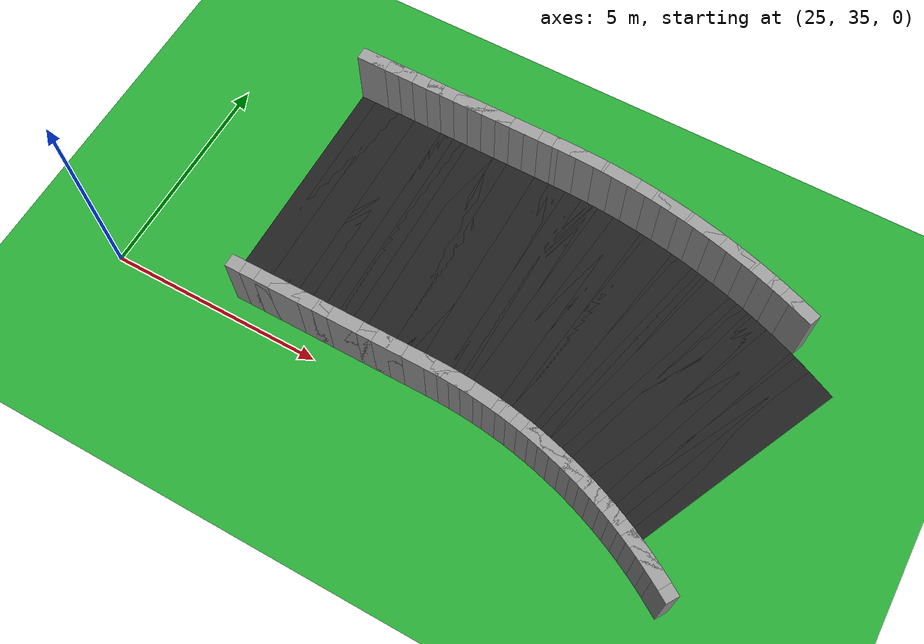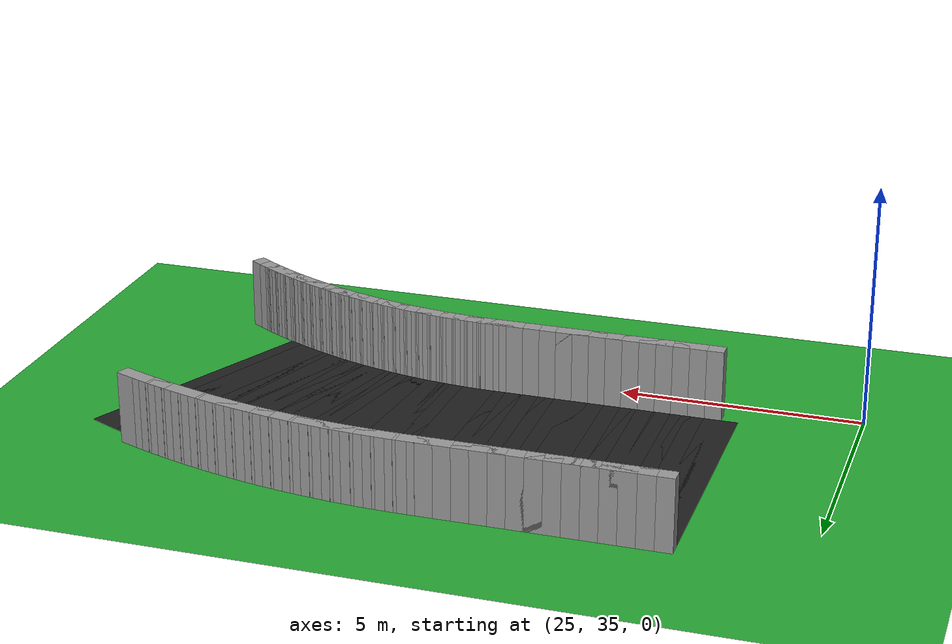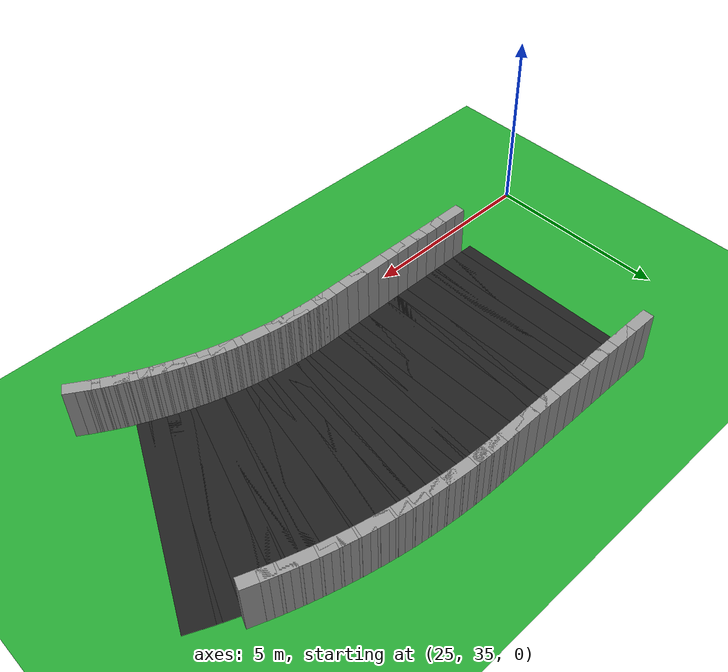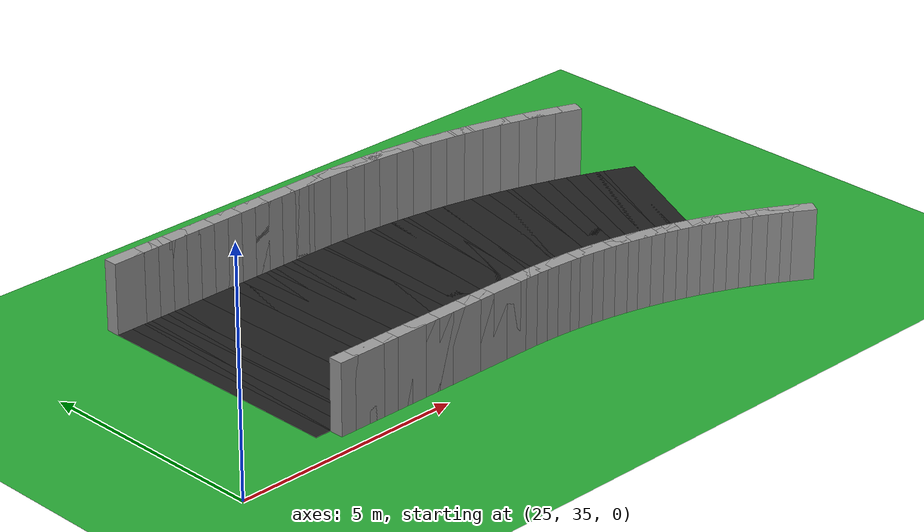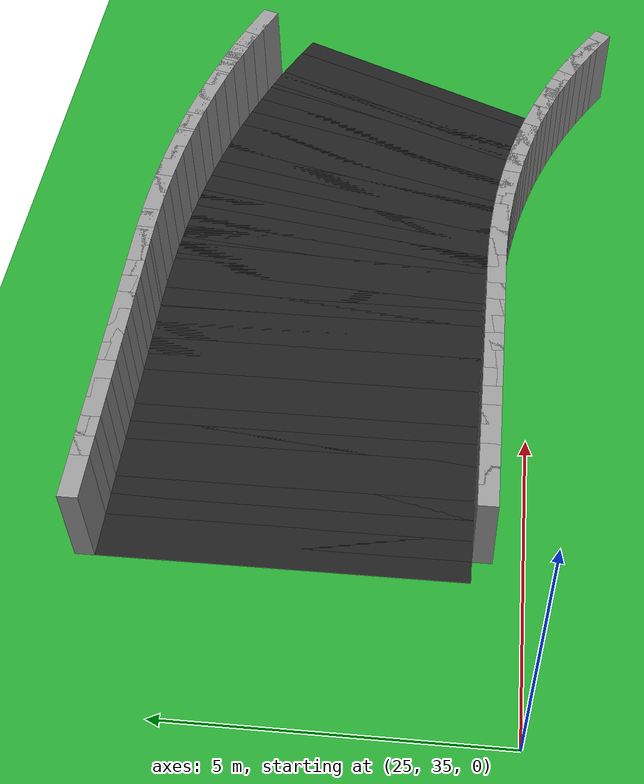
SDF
<sdf version="1.6">
 <world name="loop_speedloop">
  <include><uri>model://sun</uri></include>
  <model name="ground_plane">
   <static>true</static>
   <link name="link">
    <collision name="collision">
     <surface><friction><ode><mu>100</mu><mu2>50</mu2></ode></friction></surface>
     <geometry><plane><normal>0 0 1</normal><size>120 120</size></plane></geometry>
    </collision>
    <visual name="visual">
     <geometry><plane><normal>0 0 1</normal><size>120 120</size></plane></geometry>
     <material>
      <script><uri>file://media/materials/scripts/gazebo.material</uri><name>Gazebo/Green</name></script>
     </material>
    </visual>
   </link>
  </model>
  <model name="curbL_237">
   <static>true</static>
   <pose>38.406 33.899 0.750 0 0 2.58059</pose>
   <link name="link">
    <collision name="collision"><geometry><box><size>0.637 0.300 1.500</size></box></geometry></collision>
    <visual name="visual">
     <geometry><box><size>0.637 0.300 1.500</size></box></geometry>
     <material>
      <script><uri>file://media/materials/scripts/gazebo.material</uri><name>Gazebo/Grey</name></script>
     </material>
    </visual>
   </link>
  </model>
  <model name="curbL_238">
   <static>true</static>
   <pose>38.170 34.044 0.750 0 0 2.60553</pose>
   <link name="link">
    <collision name="collision"><geometry><box><size>0.637 0.300 1.500</size></box></geometry></collision>
    <visual name="visual">
     <geometry><box><size>0.637 0.300 1.500</size></box></geometry>
     <material>
      <script><uri>file://media/materials/scripts/gazebo.material</uri><name>Gazebo/Grey</name></script>
     </material>
    </visual>
   </link>
  </model>
  <model name="curbL_239">
   <static>true</static>
   <pose>37.930 34.182 0.750 0 0 2.63046</pose>
   <link name="link">
    <collision name="collision"><geometry><box><size>0.637 0.300 1.500</size></box></geometry></collision>
    <visual name="visual">
     <geometry><box><size>0.637 0.300 1.500</size></box></geometry>
     <material>
      <script><uri>file://media/materials/scripts/gazebo.material</uri><name>Gazebo/Grey</name></script>
     </material>
    </visual>
   </link>
  </model>
  <model name="curbL_240">
   <static>true</static>
   <pose>37.687 34.314 0.750 0 0 2.65539</pose>
   <link name="link">
    <collision name="collision"><geometry><box><size>0.637 0.300 1.500</size></box></geometry></collision>
    <visual name="visual">
     <geometry><box><size>0.637 0.300 1.500</size></box></geometry>
     <material>
      <script><uri>file://media/materials/scripts/gazebo.material</uri><name>Gazebo/Grey</name></script>
     </material>
    </visual>
   </link>
  </model>
  <model name="curbL_241">
   <static>true</static>
   <pose>37.441 34.441 0.750 0 0 2.68033</pose>
   <link name="link">
    <collision name="collision"><geometry><box><size>0.637 0.300 1.500</size></box></geometry></collision>
    <visual name="visual">
     <geometry><box><size>0.637 0.300 1.500</size></box></geometry>
     <material>
      <script><uri>file://media/materials/scripts/gazebo.material</uri><name>Gazebo/Grey</name></script>
     </material>
    </visual>
   </link>
  </model>
  <model name="asphalt_242">
   <static>true</static>
   <pose>38.417 37.189 0.005 0 0 2.70526</pose>
   <link name="link">
    <visual name="visual">
     <geometry><box><size>0.709 5.500 0.010</size></box></geometry>
     <material>
      <script><uri>file://media/materials/scripts/gazebo.material</uri><name>Gazebo/Black</name></script>
     </material>
    </visual>
   </link>
  </model>
  <model name="curbL_242">
   <static>true</static>
   <pose>37.192 34.561 0.750 0 0 2.70526</pose>
   <link name="link">
    <collision name="collision"><geometry><box><size>0.637 0.300 1.500</size></box></geometry></collision>
    <visual name="visual">
     <geometry><box><size>0.637 0.300 1.500</size></box></geometry>
     <material>
      <script><uri>file://media/materials/scripts/gazebo.material</uri><name>Gazebo/Grey</name></script>
     </material>
    </visual>
   </link>
  </model>
  <model name="asphalt_243">
   <static>true</static>
   <pose>38.099 37.332 0.005 0 0 2.73019</pose>
   <link name="link">
    <visual name="visual">
     <geometry><box><size>0.709 5.500 0.010</size></box></geometry>
     <material>
      <script><uri>file://media/materials/scripts/gazebo.material</uri><name>Gazebo/Black</name></script>
     </material>
    </visual>
   </link>
  </model>
  <model name="curbL_243">
   <static>true</static>
   <pose>36.939 34.675 0.750 0 0 2.73019</pose>
   <link name="link">
    <collision name="collision"><geometry><box><size>0.637 0.300 1.500</size></box></geometry></collision>
    <visual name="visual">
     <geometry><box><size>0.637 0.300 1.500</size></box></geometry>
     <material>
      <script><uri>file://media/materials/scripts/gazebo.material</uri><name>Gazebo/Grey</name></script>
     </material>
    </visual>
   </link>
  </model>
  <model name="asphalt_244">
   <static>true</static>
   <pose>37.777 37.468 0.005 0 0 2.75513</pose>
   <link name="link">
    <visual name="visual">
     <geometry><box><size>0.709 5.500 0.010</size></box></geometry>
     <material>
      <script><uri>file://media/materials/scripts/gazebo.material</uri><name>Gazebo/Black</name></script>
     </material>
    </visual>
   </link>
  </model>
  <model name="curbL_244">
   <static>true</static>
   <pose>36.684 34.782 0.750 0 0 2.75513</pose>
   <link name="link">
    <collision name="collision"><geometry><box><size>0.637 0.300 1.500</size></box></geometry></collision>
    <visual name="visual">
     <geometry><box><size>0.637 0.300 1.500</size></box></geometry>
     <material>
      <script><uri>file://media/materials/scripts/gazebo.material</uri><name>Gazebo/Grey</name></script>
     </material>
    </visual>
   </link>
  </model>
  <model name="asphalt_245">
   <static>true</static>
   <pose>37.452 37.595 0.005 0 0 2.78006</pose>
   <link name="link">
    <visual name="visual">
     <geometry><box><size>0.709 5.500 0.010</size></box></geometry>
     <material>
      <script><uri>file://media/materials/scripts/gazebo.material</uri><name>Gazebo/Black</name></script>
     </material>
    </visual>
   </link>
  </model>
  <model name="curbL_245">
   <static>true</static>
   <pose>36.427 34.883 0.750 0 0 2.78006</pose>
   <link name="link">
    <collision name="collision"><geometry><box><size>0.637 0.300 1.500</size></box></geometry></collision>
    <visual name="visual">
     <geometry><box><size>0.637 0.300 1.500</size></box></geometry>
     <material>
      <script><uri>file://media/materials/scripts/gazebo.material</uri><name>Gazebo/Grey</name></script>
     </material>
    </visual>
   </link>
  </model>
  <model name="curbR_245">
   <static>true</static>
   <pose>38.478 40.308 0.750 0 0 2.78006</pose>
   <link name="link">
    <collision name="collision"><geometry><box><size>0.781 0.300 1.500</size></box></geometry></collision>
    <visual name="visual">
     <geometry><box><size>0.781 0.300 1.500</size></box></geometry>
     <material>
      <script><uri>file://media/materials/scripts/gazebo.material</uri><name>Gazebo/Grey</name></script>
     </material>
    </visual>
   </link>
  </model>
  <model name="asphalt_246">
   <static>true</static>
   <pose>37.124 37.715 0.005 0 0 2.80499</pose>
   <link name="link">
    <visual name="visual">
     <geometry><box><size>0.709 5.500 0.010</size></box></geometry>
     <material>
      <script><uri>file://media/materials/scripts/gazebo.material</uri><name>Gazebo/Black</name></script>
     </material>
    </visual>
   </link>
  </model>
  <model name="curbL_246">
   <static>true</static>
   <pose>36.167 34.978 0.750 0 0 2.80499</pose>
   <link name="link">
    <collision name="collision"><geometry><box><size>0.637 0.300 1.500</size></box></geometry></collision>
    <visual name="visual">
     <geometry><box><size>0.637 0.300 1.500</size></box></geometry>
     <material>
      <script><uri>file://media/materials/scripts/gazebo.material</uri><name>Gazebo/Grey</name></script>
     </material>
    </visual>
   </link>
  </model>
  <model name="curbR_246">
   <static>true</static>
   <pose>38.082 40.452 0.750 0 0 2.80499</pose>
   <link name="link">
    <collision name="collision"><geometry><box><size>0.781 0.300 1.500</size></box></geometry></collision>
    <visual name="visual">
     <geometry><box><size>0.781 0.300 1.500</size></box></geometry>
     <material>
      <script><uri>file://media/materials/scripts/gazebo.material</uri><name>Gazebo/Grey</name></script>
     </material>
    </visual>
   </link>
  </model>
  <model name="asphalt_247">
   <static>true</static>
   <pose>36.794 37.826 0.005 0 0 2.82993</pose>
   <link name="link">
    <visual name="visual">
     <geometry><box><size>0.709 5.500 0.010</size></box></geometry>
     <material>
      <script><uri>file://media/materials/scripts/gazebo.material</uri><name>Gazebo/Black</name></script>
     </material>
    </visual>
   </link>
  </model>
  <model name="curbL_247">
   <static>true</static>
   <pose>35.904 35.066 0.750 0 0 2.82993</pose>
   <link name="link">
    <collision name="collision"><geometry><box><size>0.637 0.300 1.500</size></box></geometry></collision>
    <visual name="visual">
     <geometry><box><size>0.637 0.300 1.500</size></box></geometry>
     <material>
      <script><uri>file://media/materials/scripts/gazebo.material</uri><name>Gazebo/Grey</name></script>
     </material>
    </visual>
   </link>
  </model>
  <model name="curbR_247">
   <static>true</static>
   <pose>37.683 40.586 0.750 0 0 2.82993</pose>
   <link name="link">
    <collision name="collision"><geometry><box><size>0.781 0.300 1.500</size></box></geometry></collision>
    <visual name="visual">
     <geometry><box><size>0.781 0.300 1.500</size></box></geometry>
     <material>
      <script><uri>file://media/materials/scripts/gazebo.material</uri><name>Gazebo/Grey</name></script>
     </material>
    </visual>
   </link>
  </model>
  <model name="asphalt_248">
   <static>true</static>
   <pose>36.460 37.929 0.005 0 0 2.85486</pose>
   <link name="link">
    <visual name="visual">
     <geometry><box><size>0.709 5.500 0.010</size></box></geometry>
     <material>
      <script><uri>file://media/materials/scripts/gazebo.material</uri><name>Gazebo/Black</name></script>
     </material>
    </visual>
   </link>
  </model>
  <model name="curbL_248">
   <static>true</static>
   <pose>35.640 35.147 0.750 0 0 2.85486</pose>
   <link name="link">
    <collision name="collision"><geometry><box><size>0.637 0.300 1.500</size></box></geometry></collision>
    <visual name="visual">
     <geometry><box><size>0.637 0.300 1.500</size></box></geometry>
     <material>
      <script><uri>file://media/materials/scripts/gazebo.material</uri><name>Gazebo/Grey</name></script>
     </material>
    </visual>
   </link>
  </model>
  <model name="curbR_248">
   <static>true</static>
   <pose>37.280 40.710 0.750 0 0 2.85486</pose>
   <link name="link">
    <collision name="collision"><geometry><box><size>0.781 0.300 1.500</size></box></geometry></collision>
    <visual name="visual">
     <geometry><box><size>0.781 0.300 1.500</size></box></geometry>
     <material>
      <script><uri>file://media/materials/scripts/gazebo.material</uri><name>Gazebo/Grey</name></script>
     </material>
    </visual>
   </link>
  </model>
  <model name="asphalt_249">
   <static>true</static>
   <pose>36.124 38.023 0.005 0 0 2.87979</pose>
   <link name="link">
    <visual name="visual">
     <geometry><box><size>0.709 5.500 0.010</size></box></geometry>
     <material>
      <script><uri>file://media/materials/scripts/gazebo.material</uri><name>Gazebo/Black</name></script>
     </material>
    </visual>
   </link>
  </model>
  <model name="curbL_249">
   <static>true</static>
   <pose>35.374 35.222 0.750 0 0 2.87979</pose>
   <link name="link">
    <collision name="collision"><geometry><box><size>0.637 0.300 1.500</size></box></geometry></collision>
    <visual name="visual">
     <geometry><box><size>0.637 0.300 1.500</size></box></geometry>
     <material>
      <script><uri>file://media/materials/scripts/gazebo.material</uri><name>Gazebo/Grey</name></script>
     </material>
    </visual>
   </link>
  </model>
  <model name="curbR_249">
   <static>true</static>
   <pose>36.875 40.824 0.750 0 0 2.87979</pose>
   <link name="link">
    <collision name="collision"><geometry><box><size>0.781 0.300 1.500</size></box></geometry></collision>
    <visual name="visual">
     <geometry><box><size>0.781 0.300 1.500</size></box></geometry>
     <material>
      <script><uri>file://media/materials/scripts/gazebo.material</uri><name>Gazebo/Grey</name></script>
     </material>
    </visual>
   </link>
  </model>
  <model name="asphalt_250">
   <static>true</static>
   <pose>35.786 38.110 0.005 0 0 2.90473</pose>
   <link name="link">
    <visual name="visual">
     <geometry><box><size>0.709 5.500 0.010</size></box></geometry>
     <material>
      <script><uri>file://media/materials/scripts/gazebo.material</uri><name>Gazebo/Black</name></script>
     </material>
    </visual>
   </link>
  </model>
  <model name="curbL_250">
   <static>true</static>
   <pose>35.105 35.291 0.750 0 0 2.90473</pose>
   <link name="link">
    <collision name="collision"><geometry><box><size>0.637 0.300 1.500</size></box></geometry></collision>
    <visual name="visual">
     <geometry><box><size>0.637 0.300 1.500</size></box></geometry>
     <material>
      <script><uri>file://media/materials/scripts/gazebo.material</uri><name>Gazebo/Grey</name></script>
     </material>
    </visual>
   </link>
  </model>
  <model name="curbR_250">
   <static>true</static>
   <pose>36.466 40.928 0.750 0 0 2.90473</pose>
   <link name="link">
    <collision name="collision"><geometry><box><size>0.781 0.300 1.500</size></box></geometry></collision>
    <visual name="visual">
     <geometry><box><size>0.781 0.300 1.500</size></box></geometry>
     <material>
      <script><uri>file://media/materials/scripts/gazebo.material</uri><name>Gazebo/Grey</name></script>
     </material>
    </visual>
   </link>
  </model>
  <model name="asphalt_251">
   <static>true</static>
   <pose>35.446 38.187 0.005 0 0 2.92966</pose>
   <link name="link">
    <visual name="visual">
     <geometry><box><size>0.709 5.500 0.010</size></box></geometry>
     <material>
      <script><uri>file://media/materials/scripts/gazebo.material</uri><name>Gazebo/Black</name></script>
     </material>
    </visual>
   </link>
  </model>
  <model name="curbL_251">
   <static>true</static>
   <pose>34.836 35.352 0.750 0 0 2.92966</pose>
   <link name="link">
    <collision name="collision"><geometry><box><size>0.637 0.300 1.500</size></box></geometry></collision>
    <visual name="visual">
     <geometry><box><size>0.637 0.300 1.500</size></box></geometry>
     <material>
      <script><uri>file://media/materials/scripts/gazebo.material</uri><name>Gazebo/Grey</name></script>
     </material>
    </visual>
   </link>
  </model>
  <model name="curbR_251">
   <static>true</static>
   <pose>36.056 41.022 0.750 0 0 2.92966</pose>
   <link name="link">
    <collision name="collision"><geometry><box><size>0.781 0.300 1.500</size></box></geometry></collision>
    <visual name="visual">
     <geometry><box><size>0.781 0.300 1.500</size></box></geometry>
     <material>
      <script><uri>file://media/materials/scripts/gazebo.material</uri><name>Gazebo/Grey</name></script>
     </material>
    </visual>
   </link>
  </model>
  <model name="asphalt_252">
   <static>true</static>
   <pose>35.103 38.256 0.005 0 0 2.95459</pose>
   <link name="link">
    <visual name="visual">
     <geometry><box><size>0.709 5.500 0.010</size></box></geometry>
     <material>
      <script><uri>file://media/materials/scripts/gazebo.material</uri><name>Gazebo/Black</name></script>
     </material>
    </visual>
   </link>
  </model>
  <model name="curbL_252">
   <static>true</static>
   <pose>34.564 35.407 0.750 0 0 2.95459</pose>
   <link name="link">
    <collision name="collision"><geometry><box><size>0.637 0.300 1.500</size></box></geometry></collision>
    <visual name="visual">
     <geometry><box><size>0.637 0.300 1.500</size></box></geometry>
     <material>
      <script><uri>file://media/materials/scripts/gazebo.material</uri><name>Gazebo/Grey</name></script>
     </material>
    </visual>
   </link>
  </model>
  <model name="curbR_252">
   <static>true</static>
   <pose>35.643 41.106 0.750 0 0 2.95459</pose>
   <link name="link">
    <collision name="collision"><geometry><box><size>0.781 0.300 1.500</size></box></geometry></collision>
    <visual name="visual">
     <geometry><box><size>0.781 0.300 1.500</size></box></geometry>
     <material>
      <script><uri>file://media/materials/scripts/gazebo.material</uri><name>Gazebo/Grey</name></script>
     </material>
    </visual>
   </link>
  </model>
  <model name="asphalt_253">
   <static>true</static>
   <pose>34.760 38.317 0.005 0 0 2.97953</pose>
   <link name="link">
    <visual name="visual">
     <geometry><box><size>0.709 5.500 0.010</size></box></geometry>
     <material>
      <script><uri>file://media/materials/scripts/gazebo.material</uri><name>Gazebo/Black</name></script>
     </material>
    </visual>
   </link>
  </model>
  <model name="curbL_253">
   <static>true</static>
   <pose>34.292 35.455 0.750 0 0 2.97953</pose>
   <link name="link">
    <collision name="collision"><geometry><box><size>0.637 0.300 1.500</size></box></geometry></collision>
    <visual name="visual">
     <geometry><box><size>0.637 0.300 1.500</size></box></geometry>
     <material>
      <script><uri>file://media/materials/scripts/gazebo.material</uri><name>Gazebo/Grey</name></script>
     </material>
    </visual>
   </link>
  </model>
  <model name="curbR_253">
   <static>true</static>
   <pose>35.228 41.179 0.750 0 0 2.97953</pose>
   <link name="link">
    <collision name="collision"><geometry><box><size>0.781 0.300 1.500</size></box></geometry></collision>
    <visual name="visual">
     <geometry><box><size>0.781 0.300 1.500</size></box></geometry>
     <material>
      <script><uri>file://media/materials/scripts/gazebo.material</uri><name>Gazebo/Grey</name></script>
     </material>
    </visual>
   </link>
  </model>
  <model name="asphalt_254">
   <static>true</static>
   <pose>34.415 38.369 0.005 0 0 3.00446</pose>
   <link name="link">
    <visual name="visual">
     <geometry><box><size>0.709 5.500 0.010</size></box></geometry>
     <material>
      <script><uri>file://media/materials/scripts/gazebo.material</uri><name>Gazebo/Black</name></script>
     </material>
    </visual>
   </link>
  </model>
  <model name="curbL_254">
   <static>true</static>
   <pose>34.018 35.496 0.750 0 0 3.00446</pose>
   <link name="link">
    <collision name="collision"><geometry><box><size>0.637 0.300 1.500</size></box></geometry></collision>
    <visual name="visual">
     <geometry><box><size>0.637 0.300 1.500</size></box></geometry>
     <material>
      <script><uri>file://media/materials/scripts/gazebo.material</uri><name>Gazebo/Grey</name></script>
     </material>
    </visual>
   </link>
  </model>
  <model name="curbR_254">
   <static>true</static>
   <pose>34.811 41.242 0.750 0 0 3.00446</pose>
   <link name="link">
    <collision name="collision"><geometry><box><size>0.781 0.300 1.500</size></box></geometry></collision>
    <visual name="visual">
     <geometry><box><size>0.781 0.300 1.500</size></box></geometry>
     <material>
      <script><uri>file://media/materials/scripts/gazebo.material</uri><name>Gazebo/Grey</name></script>
     </material>
    </visual>
   </link>
  </model>
  <model name="asphalt_255">
   <static>true</static>
   <pose>34.068 38.412 0.005 0 0 3.02939</pose>
   <link name="link">
    <visual name="visual">
     <geometry><box><size>0.709 5.500 0.010</size></box></geometry>
     <material>
      <script><uri>file://media/materials/scripts/gazebo.material</uri><name>Gazebo/Black</name></script>
     </material>
    </visual>
   </link>
  </model>
  <model name="curbL_255">
   <static>true</static>
   <pose>33.744 35.531 0.750 0 0 3.02939</pose>
   <link name="link">
    <collision name="collision"><geometry><box><size>0.637 0.300 1.500</size></box></geometry></collision>
    <visual name="visual">
     <geometry><box><size>0.637 0.300 1.500</size></box></geometry>
     <material>
      <script><uri>file://media/materials/scripts/gazebo.material</uri><name>Gazebo/Grey</name></script>
     </material>
    </visual>
   </link>
  </model>
  <model name="curbR_255">
   <static>true</static>
   <pose>34.393 41.294 0.750 0 0 3.02939</pose>
   <link name="link">
    <collision name="collision"><geometry><box><size>0.781 0.300 1.500</size></box></geometry></collision>
    <visual name="visual">
     <geometry><box><size>0.781 0.300 1.500</size></box></geometry>
     <material>
      <script><uri>file://media/materials/scripts/gazebo.material</uri><name>Gazebo/Grey</name></script>
     </material>
    </visual>
   </link>
  </model>
  <model name="asphalt_256">
   <static>true</static>
   <pose>33.721 38.447 0.005 0 0 3.05433</pose>
   <link name="link">
    <visual name="visual">
     <geometry><box><size>0.709 5.500 0.010</size></box></geometry>
     <material>
      <script><uri>file://media/materials/scripts/gazebo.material</uri><name>Gazebo/Black</name></script>
     </material>
    </visual>
   </link>
  </model>
  <model name="curbL_256">
   <static>true</static>
   <pose>33.468 35.558 0.750 0 0 3.05433</pose>
   <link name="link">
    <collision name="collision"><geometry><box><size>0.637 0.300 1.500</size></box></geometry></collision>
    <visual name="visual">
     <geometry><box><size>0.637 0.300 1.500</size></box></geometry>
     <material>
      <script><uri>file://media/materials/scripts/gazebo.material</uri><name>Gazebo/Grey</name></script>
     </material>
    </visual>
   </link>
  </model>
  <model name="curbR_256">
   <static>true</static>
   <pose>33.974 41.336 0.750 0 0 3.05433</pose>
   <link name="link">
    <collision name="collision"><geometry><box><size>0.781 0.300 1.500</size></box></geometry></collision>
    <visual name="visual">
     <geometry><box><size>0.781 0.300 1.500</size></box></geometry>
     <material>
      <script><uri>file://media/materials/scripts/gazebo.material</uri><name>Gazebo/Grey</name></script>
     </material>
    </visual>
   </link>
  </model>
  <model name="asphalt_257">
   <static>true</static>
   <pose>33.373 38.473 0.005 0 0 3.07926</pose>
   <link name="link">
    <visual name="visual">
     <geometry><box><size>0.709 5.500 0.010</size></box></geometry>
     <material>
      <script><uri>file://media/materials/scripts/gazebo.material</uri><name>Gazebo/Black</name></script>
     </material>
    </visual>
   </link>
  </model>
  <model name="curbL_257">
   <static>true</static>
   <pose>33.192 35.579 0.750 0 0 3.07926</pose>
   <link name="link">
    <collision name="collision"><geometry><box><size>0.637 0.300 1.500</size></box></geometry></collision>
    <visual name="visual">
     <geometry><box><size>0.637 0.300 1.500</size></box></geometry>
     <material>
      <script><uri>file://media/materials/scripts/gazebo.material</uri><name>Gazebo/Grey</name></script>
     </material>
    </visual>
   </link>
  </model>
  <model name="curbR_257">
   <static>true</static>
   <pose>33.553 41.367 0.750 0 0 3.07926</pose>
   <link name="link">
    <collision name="collision"><geometry><box><size>0.781 0.300 1.500</size></box></geometry></collision>
    <visual name="visual">
     <geometry><box><size>0.781 0.300 1.500</size></box></geometry>
     <material>
      <script><uri>file://media/materials/scripts/gazebo.material</uri><name>Gazebo/Grey</name></script>
     </material>
    </visual>
   </link>
  </model>
  <model name="asphalt_258">
   <static>true</static>
   <pose>33.024 38.491 0.005 0 0 3.10419</pose>
   <link name="link">
    <visual name="visual">
     <geometry><box><size>0.709 5.500 0.010</size></box></geometry>
     <material>
      <script><uri>file://media/materials/scripts/gazebo.material</uri><name>Gazebo/Black</name></script>
     </material>
    </visual>
   </link>
  </model>
  <model name="curbL_258">
   <static>true</static>
   <pose>32.916 35.593 0.750 0 0 3.10419</pose>
   <link name="link">
    <collision name="collision"><geometry><box><size>0.637 0.300 1.500</size></box></geometry></collision>
    <visual name="visual">
     <geometry><box><size>0.637 0.300 1.500</size></box></geometry>
     <material>
      <script><uri>file://media/materials/scripts/gazebo.material</uri><name>Gazebo/Grey</name></script>
     </material>
    </visual>
   </link>
  </model>
  <model name="curbR_258">
   <static>true</static>
   <pose>33.133 41.388 0.750 0 0 3.10419</pose>
   <link name="link">
    <collision name="collision"><geometry><box><size>0.781 0.300 1.500</size></box></geometry></collision>
    <visual name="visual">
     <geometry><box><size>0.781 0.300 1.500</size></box></geometry>
     <material>
      <script><uri>file://media/materials/scripts/gazebo.material</uri><name>Gazebo/Grey</name></script>
     </material>
    </visual>
   </link>
  </model>
  <model name="asphalt_259">
   <static>true</static>
   <pose>32.675 38.499 0.005 0 0 3.12913</pose>
   <link name="link">
    <visual name="visual">
     <geometry><box><size>0.709 5.500 0.010</size></box></geometry>
     <material>
      <script><uri>file://media/materials/scripts/gazebo.material</uri><name>Gazebo/Black</name></script>
     </material>
    </visual>
   </link>
  </model>
  <model name="curbL_259">
   <static>true</static>
   <pose>32.639 35.600 0.750 0 0 3.12913</pose>
   <link name="link">
    <collision name="collision"><geometry><box><size>0.637 0.300 1.500</size></box></geometry></collision>
    <visual name="visual">
     <geometry><box><size>0.637 0.300 1.500</size></box></geometry>
     <material>
      <script><uri>file://media/materials/scripts/gazebo.material</uri><name>Gazebo/Grey</name></script>
     </material>
    </visual>
   </link>
  </model>
  <model name="curbR_259">
   <static>true</static>
   <pose>32.711 41.399 0.750 0 0 3.12913</pose>
   <link name="link">
    <collision name="collision"><geometry><box><size>0.781 0.300 1.500</size></box></geometry></collision>
    <visual name="visual">
     <geometry><box><size>0.781 0.300 1.500</size></box></geometry>
     <material>
      <script><uri>file://media/materials/scripts/gazebo.material</uri><name>Gazebo/Grey</name></script>
     </material>
    </visual>
   </link>
  </model>
  <model name="asphalt_260">
   <static>true</static>
   <pose>32.326 38.502 0.005 0 0 3.14159</pose>
   <link name="link">
    <visual name="visual">
     <geometry><box><size>0.710 5.500 0.010</size></box></geometry>
     <material>
      <script><uri>file://media/materials/scripts/gazebo.material</uri><name>Gazebo/Black</name></script>
     </material>
    </visual>
   </link>
  </model>
  <model name="curbL_260">
   <static>true</static>
   <pose>32.326 35.602 0.750 0 0 3.14159</pose>
   <link name="link">
    <collision name="collision"><geometry><box><size>0.710 0.300 1.500</size></box></geometry></collision>
    <visual name="visual">
     <geometry><box><size>0.710 0.300 1.500</size></box></geometry>
     <material>
      <script><uri>file://media/materials/scripts/gazebo.material</uri><name>Gazebo/Grey</name></script>
     </material>
    </visual>
   </link>
  </model>
  <model name="curbR_260">
   <static>true</static>
   <pose>32.326 41.402 0.750 0 0 3.14159</pose>
   <link name="link">
    <collision name="collision"><geometry><box><size>0.710 0.300 1.500</size></box></geometry></collision>
    <visual name="visual">
     <geometry><box><size>0.710 0.300 1.500</size></box></geometry>
     <material>
      <script><uri>file://media/materials/scripts/gazebo.material</uri><name>Gazebo/Grey</name></script>
     </material>
    </visual>
   </link>
  </model>
  <model name="asphalt_261">
   <static>true</static>
   <pose>31.976 38.502 0.005 0 0 3.14159</pose>
   <link name="link">
    <visual name="visual">
     <geometry><box><size>0.710 5.500 0.010</size></box></geometry>
     <material>
      <script><uri>file://media/materials/scripts/gazebo.material</uri><name>Gazebo/Black</name></script>
     </material>
    </visual>
   </link>
  </model>
  <model name="curbL_261">
   <static>true</static>
   <pose>31.976 35.602 0.750 0 0 3.14159</pose>
   <link name="link">
    <collision name="collision"><geometry><box><size>0.710 0.300 1.500</size></box></geometry></collision>
    <visual name="visual">
     <geometry><box><size>0.710 0.300 1.500</size></box></geometry>
     <material>
      <script><uri>file://media/materials/scripts/gazebo.material</uri><name>Gazebo/Grey</name></script>
     </material>
    </visual>
   </link>
  </model>
  <model name="curbR_261">
   <static>true</static>
   <pose>31.976 41.402 0.750 0 0 3.14159</pose>
   <link name="link">
    <collision name="collision"><geometry><box><size>0.710 0.300 1.500</size></box></geometry></collision>
    <visual name="visual">
     <geometry><box><size>0.710 0.300 1.500</size></box></geometry>
     <material>
      <script><uri>file://media/materials/scripts/gazebo.material</uri><name>Gazebo/Grey</name></script>
     </material>
    </visual>
   </link>
  </model>
  <model name="asphalt_262">
   <static>true</static>
   <pose>31.626 38.502 0.005 0 0 3.14159</pose>
   <link name="link">
    <visual name="visual">
     <geometry><box><size>0.710 5.500 0.010</size></box></geometry>
     <material>
      <script><uri>file://media/materials/scripts/gazebo.material</uri><name>Gazebo/Black</name></script>
     </material>
    </visual>
   </link>
  </model>
  <model name="curbL_262">
   <static>true</static>
   <pose>31.626 35.602 0.750 0 0 3.14159</pose>
   <link name="link">
    <collision name="collision"><geometry><box><size>0.710 0.300 1.500</size></box></geometry></collision>
    <visual name="visual">
     <geometry><box><size>0.710 0.300 1.500</size></box></geometry>
     <material>
      <script><uri>file://media/materials/scripts/gazebo.material</uri><name>Gazebo/Grey</name></script>
     </material>
    </visual>
   </link>
  </model>
  <model name="curbR_262">
   <static>true</static>
   <pose>31.626 41.402 0.750 0 0 3.14159</pose>
   <link name="link">
    <collision name="collision"><geometry><box><size>0.710 0.300 1.500</size></box></geometry></collision>
    <visual name="visual">
     <geometry><box><size>0.710 0.300 1.500</size></box></geometry>
     <material>
      <script><uri>file://media/materials/scripts/gazebo.material</uri><name>Gazebo/Grey</name></script>
     </material>
    </visual>
   </link>
  </model>
  <model name="asphalt_263">
   <static>true</static>
   <pose>31.276 38.502 0.005 0 0 3.14159</pose>
   <link name="link">
    <visual name="visual">
     <geometry><box><size>0.710 5.500 0.010</size></box></geometry>
     <material>
      <script><uri>file://media/materials/scripts/gazebo.material</uri><name>Gazebo/Black</name></script>
     </material>
    </visual>
   </link>
  </model>
  <model name="curbL_263">
   <static>true</static>
   <pose>31.276 35.602 0.750 0 0 3.14159</pose>
   <link name="link">
    <collision name="collision"><geometry><box><size>0.710 0.300 1.500</size></box></geometry></collision>
    <visual name="visual">
     <geometry><box><size>0.710 0.300 1.500</size></box></geometry>
     <material>
      <script><uri>file://media/materials/scripts/gazebo.material</uri><name>Gazebo/Grey</name></script>
     </material>
    </visual>
   </link>
  </model>
  <model name="curbR_263">
   <static>true</static>
   <pose>31.276 41.402 0.750 0 0 3.14159</pose>
   <link name="link">
    <collision name="collision"><geometry><box><size>0.710 0.300 1.500</size></box></geometry></collision>
    <visual name="visual">
     <geometry><box><size>0.710 0.300 1.500</size></box></geometry>
     <material>
      <script><uri>file://media/materials/scripts/gazebo.material</uri><name>Gazebo/Grey</name></script>
     </material>
    </visual>
   </link>
  </model>
  <model name="asphalt_264">
   <static>true</static>
   <pose>30.926 38.502 0.005 0 0 3.14159</pose>
   <link name="link">
    <visual name="visual">
     <geometry><box><size>0.710 5.500 0.010</size></box></geometry>
     <material>
      <script><uri>file://media/materials/scripts/gazebo.material</uri><name>Gazebo/Black</name></script>
     </material>
    </visual>
   </link>
  </model>
  <model name="curbL_264">
   <static>true</static>
   <pose>30.926 35.602 0.750 0 0 3.14159</pose>
   <link name="link">
    <collision name="collision"><geometry><box><size>0.710 0.300 1.500</size></box></geometry></collision>
    <visual name="visual">
     <geometry><box><size>0.710 0.300 1.500</size></box></geometry>
     <material>
      <script><uri>file://media/materials/scripts/gazebo.material</uri><name>Gazebo/Grey</name></script>
     </material>
    </visual>
   </link>
  </model>
  <model name="curbR_264">
   <static>true</static>
   <pose>30.926 41.402 0.750 0 0 3.14159</pose>
   <link name="link">
    <collision name="collision"><geometry><box><size>0.710 0.300 1.500</size></box></geometry></collision>
    <visual name="visual">
     <geometry><box><size>0.710 0.300 1.500</size></box></geometry>
     <material>
      <script><uri>file://media/materials/scripts/gazebo.material</uri><name>Gazebo/Grey</name></script>
     </material>
    </visual>
   </link>
  </model>
  <model name="asphalt_265">
   <static>true</static>
   <pose>30.576 38.502 0.005 0 0 3.14159</pose>
   <link name="link">
    <visual name="visual">
     <geometry><box><size>0.710 5.500 0.010</size></box></geometry>
     <material>
      <script><uri>file://media/materials/scripts/gazebo.material</uri><name>Gazebo/Black</name></script>
     </material>
    </visual>
   </link>
  </model>
  <model name="curbL_265">
   <static>true</static>
   <pose>30.576 35.602 0.750 0 0 3.14159</pose>
   <link name="link">
    <collision name="collision"><geometry><box><size>0.710 0.300 1.500</size></box></geometry></collision>
    <visual name="visual">
     <geometry><box><size>0.710 0.300 1.500</size></box></geometry>
     <material>
      <script><uri>file://media/materials/scripts/gazebo.material</uri><name>Gazebo/Grey</name></script>
     </material>
    </visual>
   </link>
  </model>
  <model name="curbR_265">
   <static>true</static>
   <pose>30.576 41.402 0.750 0 0 3.14159</pose>
   <link name="link">
    <collision name="collision"><geometry><box><size>0.710 0.300 1.500</size></box></geometry></collision>
    <visual name="visual">
     <geometry><box><size>0.710 0.300 1.500</size></box></geometry>
     <material>
      <script><uri>file://media/materials/scripts/gazebo.material</uri><name>Gazebo/Grey</name></script>
     </material>
    </visual>
   </link>
  </model>
  <model name="asphalt_266">
   <static>true</static>
   <pose>30.226 38.502 0.005 0 0 3.14159</pose>
   <link name="link">
    <visual name="visual">
     <geometry><box><size>0.710 5.500 0.010</size></box></geometry>
     <material>
      <script><uri>file://media/materials/scripts/gazebo.material</uri><name>Gazebo/Black</name></script>
     </material>
    </visual>
   </link>
  </model>
  <model name="curbL_266">
   <static>true</static>
   <pose>30.226 35.602 0.750 0 0 3.14159</pose>
   <link name="link">
    <collision name="collision"><geometry><box><size>0.710 0.300 1.500</size></box></geometry></collision>
    <visual name="visual">
     <geometry><box><size>0.710 0.300 1.500</size></box></geometry>
     <material>
      <script><uri>file://media/materials/scripts/gazebo.material</uri><name>Gazebo/Grey</name></script>
     </material>
    </visual>
   </link>
  </model>
  <model name="curbR_266">
   <static>true</static>
   <pose>30.226 41.402 0.750 0 0 3.14159</pose>
   <link name="link">
    <collision name="collision"><geometry><box><size>0.710 0.300 1.500</size></box></geometry></collision>
    <visual name="visual">
     <geometry><box><size>0.710 0.300 1.500</size></box></geometry>
     <material>
      <script><uri>file://media/materials/scripts/gazebo.material</uri><name>Gazebo/Grey</name></script>
     </material>
    </visual>
   </link>
  </model>
  <model name="asphalt_267">
   <static>true</static>
   <pose>29.876 38.502 0.005 0 0 3.14159</pose>
   <link name="link">
    <visual name="visual">
     <geometry><box><size>0.710 5.500 0.010</size></box></geometry>
     <material>
      <script><uri>file://media/materials/scripts/gazebo.material</uri><name>Gazebo/Black</name></script>
     </material>
    </visual>
   </link>
  </model>
  <model name="curbL_267">
   <static>true</static>
   <pose>29.876 35.602 0.750 0 0 3.14159</pose>
   <link name="link">
    <collision name="collision"><geometry><box><size>0.710 0.300 1.500</size></box></geometry></collision>
    <visual name="visual">
     <geometry><box><size>0.710 0.300 1.500</size></box></geometry>
     <material>
      <script><uri>file://media/materials/scripts/gazebo.material</uri><name>Gazebo/Grey</name></script>
     </material>
    </visual>
   </link>
  </model>
  <model name="curbR_267">
   <static>true</static>
   <pose>29.876 41.402 0.750 0 0 3.14159</pose>
   <link name="link">
    <collision name="collision"><geometry><box><size>0.710 0.300 1.500</size></box></geometry></collision>
    <visual name="visual">
     <geometry><box><size>0.710 0.300 1.500</size></box></geometry>
     <material>
      <script><uri>file://media/materials/scripts/gazebo.material</uri><name>Gazebo/Grey</name></script>
     </material>
    </visual>
   </link>
  </model>
  <model name="asphalt_268">
   <static>true</static>
   <pose>29.526 38.502 0.005 0 0 3.14159</pose>
   <link name="link">
    <visual name="visual">
     <geometry><box><size>0.710 5.500 0.010</size></box></geometry>
     <material>
      <script><uri>file://media/materials/scripts/gazebo.material</uri><name>Gazebo/Black</name></script>
     </material>
    </visual>
   </link>
  </model>
  <model name="curbL_268">
   <static>true</static>
   <pose>29.526 35.602 0.750 0 0 3.14159</pose>
   <link name="link">
    <collision name="collision"><geometry><box><size>0.710 0.300 1.500</size></box></geometry></collision>
    <visual name="visual">
     <geometry><box><size>0.710 0.300 1.500</size></box></geometry>
     <material>
      <script><uri>file://media/materials/scripts/gazebo.material</uri><name>Gazebo/Grey</name></script>
     </material>
    </visual>
   </link>
  </model>
  <model name="curbR_268">
   <static>true</static>
   <pose>29.526 41.402 0.750 0 0 3.14159</pose>
   <link name="link">
    <collision name="collision"><geometry><box><size>0.710 0.300 1.500</size></box></geometry></collision>
    <visual name="visual">
     <geometry><box><size>0.710 0.300 1.500</size></box></geometry>
     <material>
      <script><uri>file://media/materials/scripts/gazebo.material</uri><name>Gazebo/Grey</name></script>
     </material>
    </visual>
   </link>
  </model>
  <model name="asphalt_269">
   <static>true</static>
   <pose>29.176 38.502 0.005 0 0 3.14159</pose>
   <link name="link">
    <visual name="visual">
     <geometry><box><size>0.710 5.500 0.010</size></box></geometry>
     <material>
      <script><uri>file://media/materials/scripts/gazebo.material</uri><name>Gazebo/Black</name></script>
     </material>
    </visual>
   </link>
  </model>
  <model name="curbL_269">
   <static>true</static>
   <pose>29.176 35.602 0.750 0 0 3.14159</pose>
   <link name="link">
    <collision name="collision"><geometry><box><size>0.710 0.300 1.500</size></box></geometry></collision>
    <visual name="visual">
     <geometry><box><size>0.710 0.300 1.500</size></box></geometry>
     <material>
      <script><uri>file://media/materials/scripts/gazebo.material</uri><name>Gazebo/Grey</name></script>
     </material>
    </visual>
   </link>
  </model>
  <model name="curbR_269">
   <static>true</static>
   <pose>29.176 41.402 0.750 0 0 3.14159</pose>
   <link name="link">
    <collision name="collision"><geometry><box><size>0.710 0.300 1.500</size></box></geometry></collision>
    <visual name="visual">
     <geometry><box><size>0.710 0.300 1.500</size></box></geometry>
     <material>
      <script><uri>file://media/materials/scripts/gazebo.material</uri><name>Gazebo/Grey</name></script>
     </material>
    </visual>
   </link>
  </model>
  <model name="asphalt_270">
   <static>true</static>
   <pose>28.826 38.502 0.005 0 0 3.14159</pose>
   <link name="link">
    <visual name="visual">
     <geometry><box><size>0.710 5.500 0.010</size></box></geometry>
     <material>
      <script><uri>file://media/materials/scripts/gazebo.material</uri><name>Gazebo/Black</name></script>
     </material>
    </visual>
   </link>
  </model>
  <model name="curbL_270">
   <static>true</static>
   <pose>28.826 35.602 0.750 0 0 3.14159</pose>
   <link name="link">
    <collision name="collision"><geometry><box><size>0.710 0.300 1.500</size></box></geometry></collision>
    <visual name="visual">
     <geometry><box><size>0.710 0.300 1.500</size></box></geometry>
     <material>
      <script><uri>file://media/materials/scripts/gazebo.material</uri><name>Gazebo/Grey</name></script>
     </material>
    </visual>
   </link>
  </model>
  <model name="curbR_270">
   <static>true</static>
   <pose>28.826 41.402 0.750 0 0 3.14159</pose>
   <link name="link">
    <collision name="collision"><geometry><box><size>0.710 0.300 1.500</size></box></geometry></collision>
    <visual name="visual">
     <geometry><box><size>0.710 0.300 1.500</size></box></geometry>
     <material>
      <script><uri>file://media/materials/scripts/gazebo.material</uri><name>Gazebo/Grey</name></script>
     </material>
    </visual>
   </link>
  </model>
  <model name="asphalt_271">
   <static>true</static>
   <pose>28.476 38.502 0.005 0 0 3.14159</pose>
   <link name="link">
    <visual name="visual">
     <geometry><box><size>0.710 5.500 0.010</size></box></geometry>
     <material>
      <script><uri>file://media/materials/scripts/gazebo.material</uri><name>Gazebo/Black</name></script>
     </material>
    </visual>
   </link>
  </model>
  <model name="curbL_271">
   <static>true</static>
   <pose>28.476 35.602 0.750 0 0 3.14159</pose>
   <link name="link">
    <collision name="collision"><geometry><box><size>0.710 0.300 1.500</size></box></geometry></collision>
    <visual name="visual">
     <geometry><box><size>0.710 0.300 1.500</size></box></geometry>
     <material>
      <script><uri>file://media/materials/scripts/gazebo.material</uri><name>Gazebo/Grey</name></script>
     </material>
    </visual>
   </link>
  </model>
  <model name="curbR_271">
   <static>true</static>
   <pose>28.476 41.402 0.750 0 0 3.14159</pose>
   <link name="link">
    <collision name="collision"><geometry><box><size>0.710 0.300 1.500</size></box></geometry></collision>
    <visual name="visual">
     <geometry><box><size>0.710 0.300 1.500</size></box></geometry>
     <material>
      <script><uri>file://media/materials/scripts/gazebo.material</uri><name>Gazebo/Grey</name></script>
     </material>
    </visual>
   </link>
  </model>
  <model name="asphalt_272">
   <static>true</static>
   <pose>28.126 38.502 0.005 0 0 3.14159</pose>
   <link name="link">
    <visual name="visual">
     <geometry><box><size>0.710 5.500 0.010</size></box></geometry>
     <material>
      <script><uri>file://media/materials/scripts/gazebo.material</uri><name>Gazebo/Black</name></script>
     </material>
    </visual>
   </link>
  </model>
  <model name="curbL_272">
   <static>true</static>
   <pose>28.126 35.602 0.750 0 0 3.14159</pose>
   <link name="link">
    <collision name="collision"><geometry><box><size>0.710 0.300 1.500</size></box></geometry></collision>
    <visual name="visual">
     <geometry><box><size>0.710 0.300 1.500</size></box></geometry>
     <material>
      <script><uri>file://media/materials/scripts/gazebo.material</uri><name>Gazebo/Grey</name></script>
     </material>
    </visual>
   </link>
  </model>
  <model name="curbR_272">
   <static>true</static>
   <pose>28.126 41.402 0.750 0 0 3.14159</pose>
   <link name="link">
    <collision name="collision"><geometry><box><size>0.710 0.300 1.500</size></box></geometry></collision>
    <visual name="visual">
     <geometry><box><size>0.710 0.300 1.500</size></box></geometry>
     <material>
      <script><uri>file://media/materials/scripts/gazebo.material</uri><name>Gazebo/Grey</name></script>
     </material>
    </visual>
   </link>
  </model>
  <model name="asphalt_273">
   <static>true</static>
   <pose>27.776 38.502 0.005 0 0 3.14159</pose>
   <link name="link">
    <visual name="visual">
     <geometry><box><size>0.710 5.500 0.010</size></box></geometry>
     <material>
      <script><uri>file://media/materials/scripts/gazebo.material</uri><name>Gazebo/Black</name></script>
     </material>
    </visual>
   </link>
  </model>
  <model name="curbR_273">
   <static>true</static>
   <pose>27.776 41.402 0.750 0 0 3.14159</pose>
   <link name="link">
    <collision name="collision"><geometry><box><size>0.710 0.300 1.500</size></box></geometry></collision>
    <visual name="visual">
     <geometry><box><size>0.710 0.300 1.500</size></box></geometry>
     <material>
      <script><uri>file://media/materials/scripts/gazebo.material</uri><name>Gazebo/Grey</name></script>
     </material>
    </visual>
   </link>
  </model>
 </world>
</sdf>
